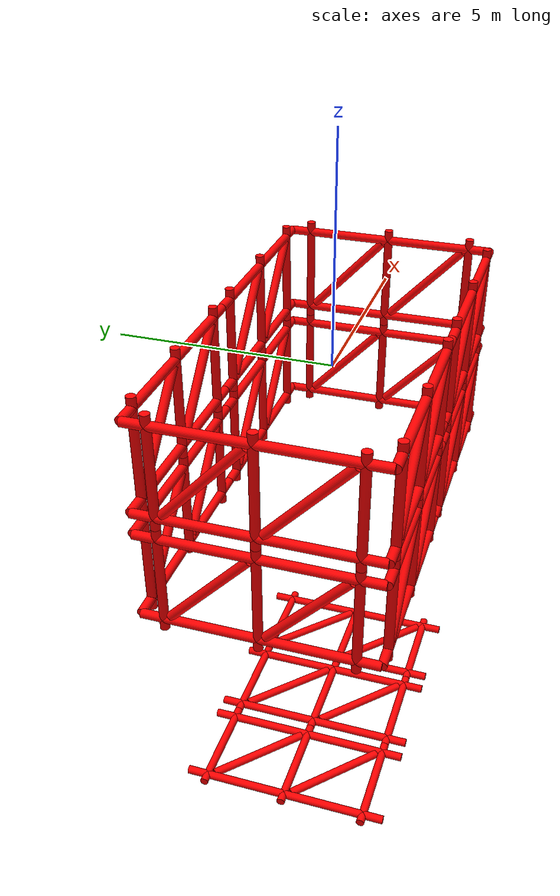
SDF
<?xml version="1.0" ?>
<sdf version="1.6">
    <world name="rov">
         <include>
            <name>mega_structure</name>
            <uri>model://mega_structure</uri>
            <pose>0 0 0 0 0 0</pose>
        </include>
     </world>
</sdf>
